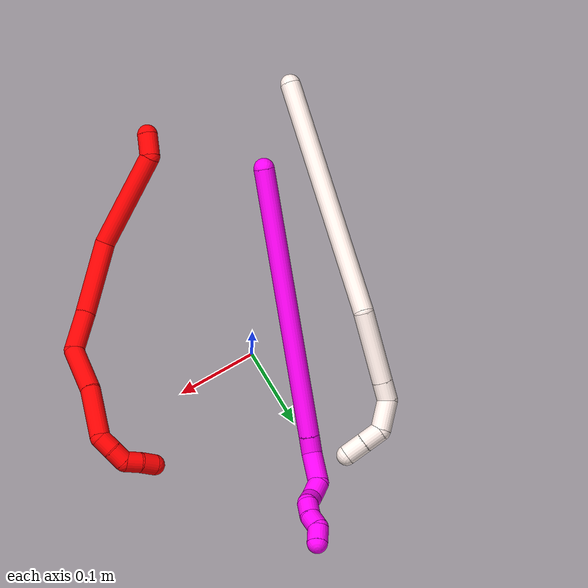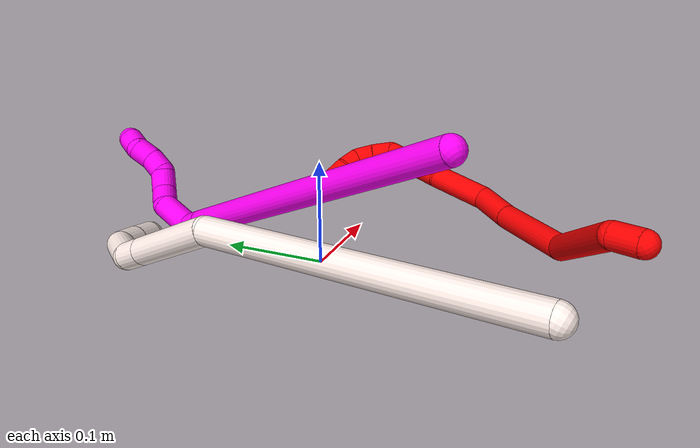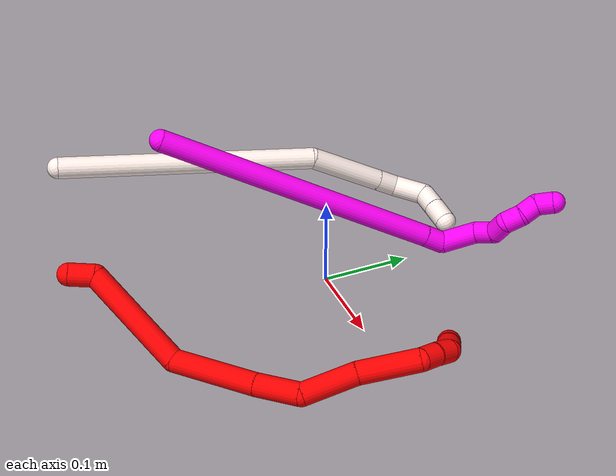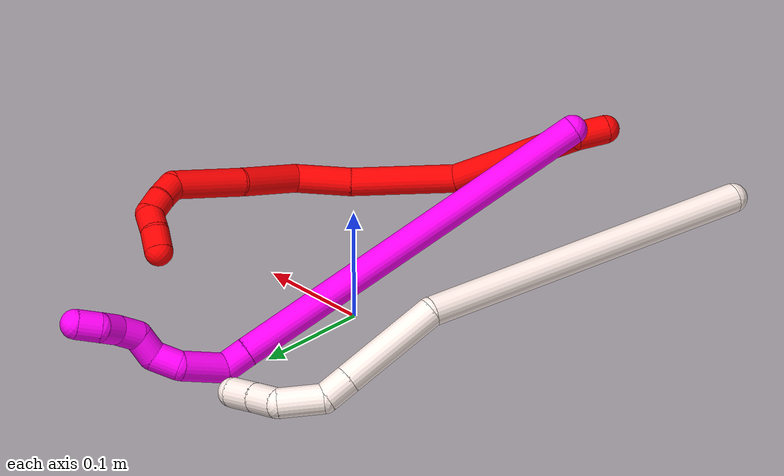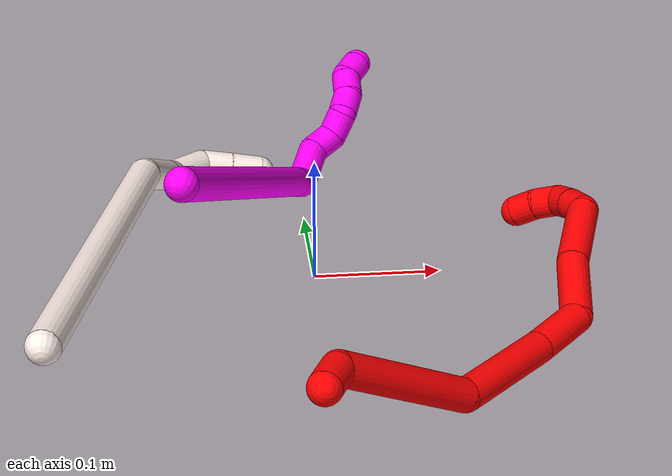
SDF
<sdf version="1.7">
 <world name="default">
  <model name="photoneo_s_sensor">
   <static>1</static>
   <pose>0 0 2 1.57079 1.57079 3.14159</pose>
   <link name="link">
    <inertial><mass>0.1</mass></inertial>
    <sensor name="sensor" type="depth">
     <update_rate>30</update_rate>
     <camera>
      <horizontal_fov>1.22</horizontal_fov>
      <image><width>1920</width><height>1200</height><format>B8G8R8</format></image>
      <clip><near>0.1</near><far>4</far></clip>
      <depth_camera><output>points</output></depth_camera>
     </camera>
     <plugin name="camera_plugin" filename="libgazebo_ros_depth_camera.so">
      <baseline>0.2</baseline>
      <alwaysOn>1</alwaysOn>
      <updateRate>0.0</updateRate>
      <cameraName>camera_ir</cameraName>
      <imageTopicName>/camera/color/image_raw</imageTopicName>
      <cameraInfoTopicName>/camera/color/camera_info</cameraInfoTopicName>
      <depthImageTopicName>/camera/depth/image_raw</depthImageTopicName>
      <depthImageCameraInfoTopicName>/camera/depth/camera_info</depthImageCameraInfoTopicName>
      <pointCloudTopicName>/camera/depth/points</pointCloudTopicName>
      <frameName>fr_optical</frameName>
      <pointCloudCutoff>0.1</pointCloudCutoff>
      <pointCloudCutoffMax>2.0</pointCloudCutoffMax>
      <distortionK1>0</distortionK1>
      <distortionK2>0</distortionK2>
      <distortionK3>0</distortionK3>
      <distortionT1>0</distortionT1>
      <distortionT2>0</distortionT2>
      <CxPrime>0</CxPrime>
      <Cx>0</Cx>
      <Cy>0</Cy>
      <focalLength>0</focalLength>
      <hackBaseline>0</hackBaseline>
     </plugin>
    </sensor>
   </link>
  </model>
  <model name="2">
   <static>0</static>
   <link name="2">
    <collision name="collision-cylinder-e_1_1_4">
     <pose>0.004115 0.007778 -0.011113 -2.53095 0.294532 -0.8798</pose>
     <geometry><cylinder><radius>0.0125</radius><length>0.02835</length></cylinder></geometry>
     <surface>
      <friction><ode><mu>1.16</mu><mu2>1.16</mu2><slip1>0</slip1><slip2>0</slip2></ode></friction>
      <contact><ode><kp>1e+06</kp><kd>1</kd><max_vel>0</max_vel><min_depth>0.001</min_depth></ode></contact>
     </surface>
    </collision>
    <visual name="visual-cylinder-e_1_1_4">
     <pose>0.004115 0.007778 -0.011113 -2.53095 0.294532 -0.8798</pose>
     <geometry><cylinder><radius>0.0125</radius><length>0.02835</length></cylinder></geometry>
     <material><ambient>1 0 0 1</ambient></material>
    </visual>
    <collision name="collision-cylinder-e_2_4_5">
     <pose>0.058407 0.018451 -0.057583 -3.05987 0.955396 -2.98398</pose>
     <geometry><cylinder><radius>0.0125</radius><length>0.122901</length></cylinder></geometry>
     <surface>
      <friction><ode><mu>1.16</mu><mu2>1.16</mu2><slip1>0</slip1><slip2>0</slip2></ode></friction>
      <contact><ode><kp>1e+06</kp><kd>1</kd><max_vel>0</max_vel><min_depth>0.001</min_depth></ode></contact>
     </surface>
    </collision>
    <visual name="visual-cylinder-e_2_4_5">
     <pose>0.058407 0.018451 -0.057583 -3.05987 0.955396 -2.98398</pose>
     <geometry><cylinder><radius>0.0125</radius><length>0.122901</length></cylinder></geometry>
     <material><ambient>1 0 0 1</ambient></material>
    </visual>
    <collision name="collision-cylinder-e_3_5_6">
     <pose>0.13639 0.046377 -0.120265 -2.40003 0.643735 -1.41796</pose>
     <geometry><cylinder><radius>0.0125</radius><length>0.092657</length></cylinder></geometry>
     <surface>
      <friction><ode><mu>1.16</mu><mu2>1.16</mu2><slip1>0</slip1><slip2>0</slip2></ode></friction>
      <contact><ode><kp>1e+06</kp><kd>1</kd><max_vel>0</max_vel><min_depth>0.001</min_depth></ode></contact>
     </surface>
    </collision>
    <visual name="visual-cylinder-e_3_5_6">
     <pose>0.13639 0.046377 -0.120265 -2.40003 0.643735 -1.41796</pose>
     <geometry><cylinder><radius>0.0125</radius><length>0.092657</length></cylinder></geometry>
     <material><ambient>1 0 0 1</ambient></material>
    </visual>
    <collision name="collision-cylinder-e_4_6_7">
     <pose>0.178701 0.08689 -0.160652 -2.27151 0.621421 -1.20925</pose>
     <geometry><cylinder><radius>0.0125</radius><length>0.049831</length></cylinder></geometry>
     <surface>
      <friction><ode><mu>1.16</mu><mu2>1.16</mu2><slip1>0</slip1><slip2>0</slip2></ode></friction>
      <contact><ode><kp>1e+06</kp><kd>1</kd><max_vel>0</max_vel><min_depth>0.001</min_depth></ode></contact>
     </surface>
    </collision>
    <visual name="visual-cylinder-e_4_6_7">
     <pose>0.178701 0.08689 -0.160652 -2.27151 0.621421 -1.20925</pose>
     <geometry><cylinder><radius>0.0125</radius><length>0.049831</length></cylinder></geometry>
     <material><ambient>1 0 0 1</ambient></material>
    </visual>
    <collision name="collision-cylinder-e_5_7_8">
     <pose>0.191855 0.124588 -0.1935 -2.2985 -0.045409 0.101194</pose>
     <geometry><cylinder><radius>0.0125</radius><length>0.059558</length></cylinder></geometry>
     <surface>
      <friction><ode><mu>1.16</mu><mu2>1.16</mu2><slip1>0</slip1><slip2>0</slip2></ode></friction>
      <contact><ode><kp>1e+06</kp><kd>1</kd><max_vel>0</max_vel><min_depth>0.001</min_depth></ode></contact>
     </surface>
    </collision>
    <visual name="visual-cylinder-e_5_7_8">
     <pose>0.191855 0.124588 -0.1935 -2.2985 -0.045409 0.101194</pose>
     <geometry><cylinder><radius>0.0125</radius><length>0.059558</length></cylinder></geometry>
     <material><ambient>1 0 0 1</ambient></material>
    </visual>
    <collision name="collision-cylinder-e_6_8_9">
     <pose>0.195022 0.171053 -0.235181 -2.30511 0.137453 -0.307302</pose>
     <geometry><cylinder><radius>0.0125</radius><length>0.065967</length></cylinder></geometry>
     <surface>
      <friction><ode><mu>1.16</mu><mu2>1.16</mu2><slip1>0</slip1><slip2>0</slip2></ode></friction>
      <contact><ode><kp>1e+06</kp><kd>1</kd><max_vel>0</max_vel><min_depth>0.001</min_depth></ode></contact>
     </surface>
    </collision>
    <visual name="visual-cylinder-e_6_8_9">
     <pose>0.195022 0.171053 -0.235181 -2.30511 0.137453 -0.307302</pose>
     <geometry><cylinder><radius>0.0125</radius><length>0.065967</length></cylinder></geometry>
     <material><ambient>1 0 0 1</ambient></material>
    </visual>
    <collision name="collision-cylinder-e_7_9_10">
     <pose>0.196266 0.198191 -0.266238 -2.83657 -0.328529 1.64623</pose>
     <geometry><cylinder><radius>0.0125</radius><length>0.020302</length></cylinder></geometry>
     <surface>
      <friction><ode><mu>1.16</mu><mu2>1.16</mu2><slip1>0</slip1><slip2>0</slip2></ode></friction>
      <contact><ode><kp>1e+06</kp><kd>1</kd><max_vel>0</max_vel><min_depth>0.001</min_depth></ode></contact>
     </surface>
    </collision>
    <visual name="visual-cylinder-e_7_9_10">
     <pose>0.196266 0.198191 -0.266238 -2.83657 -0.328529 1.64623</pose>
     <geometry><cylinder><radius>0.0125</radius><length>0.020302</length></cylinder></geometry>
     <material><ambient>1 0 0 1</ambient></material>
    </visual>
    <collision name="collision-cylinder-e_8_10_11">
     <pose>0.189831 0.202783 -0.284919 -2.96419 -0.315936 2.12319</pose>
     <geometry><cylinder><radius>0.0125</radius><length>0.020341</length></cylinder></geometry>
     <surface>
      <friction><ode><mu>1.16</mu><mu2>1.16</mu2><slip1>0</slip1><slip2>0</slip2></ode></friction>
      <contact><ode><kp>1e+06</kp><kd>1</kd><max_vel>0</max_vel><min_depth>0.001</min_depth></ode></contact>
     </surface>
    </collision>
    <visual name="visual-cylinder-e_8_10_11">
     <pose>0.189831 0.202783 -0.284919 -2.96419 -0.315936 2.12319</pose>
     <geometry><cylinder><radius>0.0125</radius><length>0.020341</length></cylinder></geometry>
     <material><ambient>1 0 0 1</ambient></material>
    </visual>
    <collision name="collision-cylinder-e_9_11_12">
     <pose>0.179145 0.201733 -0.300418 2.71004 -0.851742 -2.24139</pose>
     <geometry><cylinder><radius>0.0125</radius><length>0.020004</length></cylinder></geometry>
     <surface>
      <friction><ode><mu>1.16</mu><mu2>1.16</mu2><slip1>0</slip1><slip2>0</slip2></ode></friction>
      <contact><ode><kp>1e+06</kp><kd>1</kd><max_vel>0</max_vel><min_depth>0.001</min_depth></ode></contact>
     </surface>
    </collision>
    <visual name="visual-cylinder-e_9_11_12">
     <pose>0.179145 0.201733 -0.300418 2.71004 -0.851742 -2.24139</pose>
     <geometry><cylinder><radius>0.0125</radius><length>0.020004</length></cylinder></geometry>
     <material><ambient>1 0 0 1</ambient></material>
    </visual>
    <collision name="collision-cylinder-e_10_12_2">
     <pose>0.16541 0.195069 -0.313262 2.62372 -0.66642 -1.83516</pose>
     <geometry><cylinder><radius>0.0125</radius><length>0.020089</length></cylinder></geometry>
     <surface>
      <friction><ode><mu>1.16</mu><mu2>1.16</mu2><slip1>0</slip1><slip2>0</slip2></ode></friction>
      <contact><ode><kp>1e+06</kp><kd>1</kd><max_vel>0</max_vel><min_depth>0.001</min_depth></ode></contact>
     </surface>
    </collision>
    <visual name="visual-cylinder-e_10_12_2">
     <pose>0.16541 0.195069 -0.313262 2.62372 -0.66642 -1.83516</pose>
     <geometry><cylinder><radius>0.0125</radius><length>0.020089</length></cylinder></geometry>
     <material><ambient>1 0 0 1</ambient></material>
    </visual>
    <collision name="collision-sphere-2">
     <pose>0.159201 0.191161 -0.320122 0 -0 0</pose>
     <geometry><sphere><radius>0.0125</radius></sphere></geometry>
     <surface>
      <friction><ode><mu>1.16</mu><mu2>1.16</mu2><slip1>0</slip1><slip2>0</slip2></ode></friction>
      <contact><ode><kp>1e+06</kp><kd>1</kd><max_vel>0</max_vel><min_depth>0.001</min_depth></ode></contact>
     </surface>
    </collision>
    <visual name="visual-sphere-2">
     <pose>0.159201 0.191161 -0.320122 0 -0 0</pose>
     <geometry><sphere><radius>0.0125</radius></sphere></geometry>
     <material><ambient>1 0 0 1</ambient></material>
    </visual>
    <collision name="collision-sphere-12">
     <pose>0.171619 0.198977 -0.306402 0 -0 0</pose>
     <geometry><sphere><radius>0.0125</radius></sphere></geometry>
     <surface>
      <friction><ode><mu>1.16</mu><mu2>1.16</mu2><slip1>0</slip1><slip2>0</slip2></ode></friction>
      <contact><ode><kp>1e+06</kp><kd>1</kd><max_vel>0</max_vel><min_depth>0.001</min_depth></ode></contact>
     </surface>
    </collision>
    <visual name="visual-sphere-12">
     <pose>0.171619 0.198977 -0.306402 0 -0 0</pose>
     <geometry><sphere><radius>0.0125</radius></sphere></geometry>
     <material><ambient>1 0 0 1</ambient></material>
    </visual>
    <collision name="collision-sphere-11">
     <pose>0.186671 0.204489 -0.294434 0 -0 0</pose>
     <geometry><sphere><radius>0.0125</radius></sphere></geometry>
     <surface>
      <friction><ode><mu>1.16</mu><mu2>1.16</mu2><slip1>0</slip1><slip2>0</slip2></ode></friction>
      <contact><ode><kp>1e+06</kp><kd>1</kd><max_vel>0</max_vel><min_depth>0.001</min_depth></ode></contact>
     </surface>
    </collision>
    <visual name="visual-sphere-11">
     <pose>0.186671 0.204489 -0.294434 0 -0 0</pose>
     <geometry><sphere><radius>0.0125</radius></sphere></geometry>
     <material><ambient>1 0 0 1</ambient></material>
    </visual>
    <collision name="collision-sphere-10">
     <pose>0.192991 0.201077 -0.275403 0 -0 0</pose>
     <geometry><sphere><radius>0.0125</radius></sphere></geometry>
     <surface>
      <friction><ode><mu>1.16</mu><mu2>1.16</mu2><slip1>0</slip1><slip2>0</slip2></ode></friction>
      <contact><ode><kp>1e+06</kp><kd>1</kd><max_vel>0</max_vel><min_depth>0.001</min_depth></ode></contact>
     </surface>
    </collision>
    <visual name="visual-sphere-10">
     <pose>0.192991 0.201077 -0.275403 0 -0 0</pose>
     <geometry><sphere><radius>0.0125</radius></sphere></geometry>
     <material><ambient>1 0 0 1</ambient></material>
    </visual>
    <collision name="collision-sphere-9">
     <pose>0.199542 0.195306 -0.257074 0 -0 0</pose>
     <geometry><sphere><radius>0.0125</radius></sphere></geometry>
     <surface>
      <friction><ode><mu>1.16</mu><mu2>1.16</mu2><slip1>0</slip1><slip2>0</slip2></ode></friction>
      <contact><ode><kp>1e+06</kp><kd>1</kd><max_vel>0</max_vel><min_depth>0.001</min_depth></ode></contact>
     </surface>
    </collision>
    <visual name="visual-sphere-9">
     <pose>0.199542 0.195306 -0.257074 0 -0 0</pose>
     <geometry><sphere><radius>0.0125</radius></sphere></geometry>
     <material><ambient>1 0 0 1</ambient></material>
    </visual>
    <collision name="collision-sphere-4">
     <pose>0.00823 0.015556 -0.022226 0 -0 0</pose>
     <geometry><sphere><radius>0.0125</radius></sphere></geometry>
     <surface>
      <friction><ode><mu>1.16</mu><mu2>1.16</mu2><slip1>0</slip1><slip2>0</slip2></ode></friction>
      <contact><ode><kp>1e+06</kp><kd>1</kd><max_vel>0</max_vel><min_depth>0.001</min_depth></ode></contact>
     </surface>
    </collision>
    <visual name="visual-sphere-4">
     <pose>0.00823 0.015556 -0.022226 0 -0 0</pose>
     <geometry><sphere><radius>0.0125</radius></sphere></geometry>
     <material><ambient>1 0 0 1</ambient></material>
    </visual>
    <collision name="collision-sphere-1">
     <geometry><sphere><radius>0.0125</radius></sphere></geometry>
     <surface>
      <friction><ode><mu>1.16</mu><mu2>1.16</mu2><slip1>0</slip1><slip2>0</slip2></ode></friction>
      <contact><ode><kp>1e+06</kp><kd>1</kd><max_vel>0</max_vel><min_depth>0.001</min_depth></ode></contact>
     </surface>
    </collision>
    <visual name="visual-sphere-1">
     <geometry><sphere><radius>0.0125</radius></sphere></geometry>
     <material><ambient>1 0 0 1</ambient></material>
    </visual>
    <collision name="collision-sphere-8">
     <pose>0.190503 0.146801 -0.213288 0 -0 0</pose>
     <geometry><sphere><radius>0.0125</radius></sphere></geometry>
     <surface>
      <friction><ode><mu>1.16</mu><mu2>1.16</mu2><slip1>0</slip1><slip2>0</slip2></ode></friction>
      <contact><ode><kp>1e+06</kp><kd>1</kd><max_vel>0</max_vel><min_depth>0.001</min_depth></ode></contact>
     </surface>
    </collision>
    <visual name="visual-sphere-8">
     <pose>0.190503 0.146801 -0.213288 0 -0 0</pose>
     <geometry><sphere><radius>0.0125</radius></sphere></geometry>
     <material><ambient>1 0 0 1</ambient></material>
    </visual>
    <collision name="collision-sphere-5">
     <pose>0.108584 0.021347 -0.092939 0 -0 0</pose>
     <geometry><sphere><radius>0.0125</radius></sphere></geometry>
     <surface>
      <friction><ode><mu>1.16</mu><mu2>1.16</mu2><slip1>0</slip1><slip2>0</slip2></ode></friction>
      <contact><ode><kp>1e+06</kp><kd>1</kd><max_vel>0</max_vel><min_depth>0.001</min_depth></ode></contact>
     </surface>
    </collision>
    <visual name="visual-sphere-5">
     <pose>0.108584 0.021347 -0.092939 0 -0 0</pose>
     <geometry><sphere><radius>0.0125</radius></sphere></geometry>
     <material><ambient>1 0 0 1</ambient></material>
    </visual>
    <collision name="collision-sphere-6">
     <pose>0.164195 0.071406 -0.147591 0 -0 0</pose>
     <geometry><sphere><radius>0.0125</radius></sphere></geometry>
     <surface>
      <friction><ode><mu>1.16</mu><mu2>1.16</mu2><slip1>0</slip1><slip2>0</slip2></ode></friction>
      <contact><ode><kp>1e+06</kp><kd>1</kd><max_vel>0</max_vel><min_depth>0.001</min_depth></ode></contact>
     </surface>
    </collision>
    <visual name="visual-sphere-6">
     <pose>0.164195 0.071406 -0.147591 0 -0 0</pose>
     <geometry><sphere><radius>0.0125</radius></sphere></geometry>
     <material><ambient>1 0 0 1</ambient></material>
    </visual>
    <collision name="collision-sphere-7">
     <pose>0.193206 0.102375 -0.173713 0 -0 0</pose>
     <geometry><sphere><radius>0.0125</radius></sphere></geometry>
     <surface>
      <friction><ode><mu>1.16</mu><mu2>1.16</mu2><slip1>0</slip1><slip2>0</slip2></ode></friction>
      <contact><ode><kp>1e+06</kp><kd>1</kd><max_vel>0</max_vel><min_depth>0.001</min_depth></ode></contact>
     </surface>
    </collision>
    <visual name="visual-sphere-7">
     <pose>0.193206 0.102375 -0.173713 0 -0 0</pose>
     <geometry><sphere><radius>0.0125</radius></sphere></geometry>
     <material><ambient>1 0 0 1</ambient></material>
    </visual>
    <inertial>
     <pose>0.135762 0.091844 -0.154166 0 -0 0</pose>
     <mass>0.5</mass>
     <inertia>
      <ixx>-0.000108</ixx>
      <ixy>0</ixy>
      <ixz>0</ixz>
      <iyy>8.2e-05</iyy>
      <iyz>0</iyz>
      <izz>-0.000294</izz>
     </inertia>
    </inertial>
   </link>
   <pose>-0.018665 -0.287213 0.075928 0.985399 0.264263 -0.119452</pose>
  </model>
  <model name="10">
   <static>0</static>
   <link name="10">
    <collision name="collision-cylinder-e_1_1_4">
     <pose>0.0173 0.145289 0.07512 -1.09361 0.105379 -0.064184</pose>
     <geometry><cylinder><radius>0.0125</radius><length>0.328944</length></cylinder></geometry>
     <surface>
      <friction><ode><mu>1.16</mu><mu2>1.16</mu2><slip1>0</slip1><slip2>0</slip2></ode></friction>
      <contact><ode><kp>1e+06</kp><kd>1</kd><max_vel>0</max_vel><min_depth>0.001</min_depth></ode></contact>
     </surface>
    </collision>
    <visual name="visual-cylinder-e_1_1_4">
     <pose>0.0173 0.145289 0.07512 -1.09361 0.105379 -0.064184</pose>
     <geometry><cylinder><radius>0.0125</radius><length>0.328944</length></cylinder></geometry>
     <material><ambient>1 0 0.964706 1</ambient></material>
    </visual>
    <collision name="collision-cylinder-e_2_4_5">
     <pose>0.035945 0.300812 0.155158 -1.12289 0.117937 -0.07423</pose>
     <geometry><cylinder><radius>0.0125</radius><length>0.022869</length></cylinder></geometry>
     <surface>
      <friction><ode><mu>1.16</mu><mu2>1.16</mu2><slip1>0</slip1><slip2>0</slip2></ode></friction>
      <contact><ode><kp>1e+06</kp><kd>1</kd><max_vel>0</max_vel><min_depth>0.001</min_depth></ode></contact>
     </surface>
    </collision>
    <visual name="visual-cylinder-e_2_4_5">
     <pose>0.035945 0.300812 0.155158 -1.12289 0.117937 -0.07423</pose>
     <geometry><cylinder><radius>0.0125</radius><length>0.022869</length></cylinder></geometry>
     <material><ambient>1 0 0.964706 1</ambient></material>
    </visual>
    <collision name="collision-cylinder-e_3_5_6">
     <pose>0.035927 0.318516 0.179449 -0.367975 -0.065568 0.012206</pose>
     <geometry><cylinder><radius>0.0125</radius><length>0.041615</length></cylinder></geometry>
     <surface>
      <friction><ode><mu>1.16</mu><mu2>1.16</mu2><slip1>0</slip1><slip2>0</slip2></ode></friction>
      <contact><ode><kp>1e+06</kp><kd>1</kd><max_vel>0</max_vel><min_depth>0.001</min_depth></ode></contact>
     </surface>
    </collision>
    <visual name="visual-cylinder-e_3_5_6">
     <pose>0.035927 0.318516 0.179449 -0.367975 -0.065568 0.012206</pose>
     <geometry><cylinder><radius>0.0125</radius><length>0.041615</length></cylinder></geometry>
     <material><ambient>1 0 0.964706 1</ambient></material>
    </visual>
    <collision name="collision-cylinder-e_4_6_7">
     <pose>0.039871 0.32753 0.20912 -0.148846 0.471318 -0.035803</pose>
     <geometry><cylinder><radius>0.0125</radius><length>0.023377</length></cylinder></geometry>
     <surface>
      <friction><ode><mu>1.16</mu><mu2>1.16</mu2><slip1>0</slip1><slip2>0</slip2></ode></friction>
      <contact><ode><kp>1e+06</kp><kd>1</kd><max_vel>0</max_vel><min_depth>0.001</min_depth></ode></contact>
     </surface>
    </collision>
    <visual name="visual-cylinder-e_4_6_7">
     <pose>0.039871 0.32753 0.20912 -0.148846 0.471318 -0.035803</pose>
     <geometry><cylinder><radius>0.0125</radius><length>0.023377</length></cylinder></geometry>
     <material><ambient>1 0 0.964706 1</ambient></material>
    </visual>
    <collision name="collision-cylinder-e_5_7_8">
     <pose>0.04644 0.324747 0.229125 0.419338 0.118137 0.025167</pose>
     <geometry><cylinder><radius>0.0125</radius><length>0.021403</length></cylinder></geometry>
     <surface>
      <friction><ode><mu>1.16</mu><mu2>1.16</mu2><slip1>0</slip1><slip2>0</slip2></ode></friction>
      <contact><ode><kp>1e+06</kp><kd>1</kd><max_vel>0</max_vel><min_depth>0.001</min_depth></ode></contact>
     </surface>
    </collision>
    <visual name="visual-cylinder-e_5_7_8">
     <pose>0.04644 0.324747 0.229125 0.419338 0.118137 0.025167</pose>
     <geometry><cylinder><radius>0.0125</radius><length>0.021403</length></cylinder></geometry>
     <material><ambient>1 0 0.964706 1</ambient></material>
    </visual>
    <collision name="collision-cylinder-e_6_8_9">
     <pose>0.046834 0.322154 0.249061 -0.167897 -0.083355 0.007018</pose>
     <geometry><cylinder><radius>0.0125</radius><length>0.020822</length></cylinder></geometry>
     <surface>
      <friction><ode><mu>1.16</mu><mu2>1.16</mu2><slip1>0</slip1><slip2>0</slip2></ode></friction>
      <contact><ode><kp>1e+06</kp><kd>1</kd><max_vel>0</max_vel><min_depth>0.001</min_depth></ode></contact>
     </surface>
    </collision>
    <visual name="visual-cylinder-e_6_8_9">
     <pose>0.046834 0.322154 0.249061 -0.167897 -0.083355 0.007018</pose>
     <geometry><cylinder><radius>0.0125</radius><length>0.020822</length></cylinder></geometry>
     <material><ambient>1 0 0.964706 1</ambient></material>
    </visual>
    <collision name="collision-cylinder-e_7_9_10">
     <pose>0.041961 0.325901 0.268475 -0.215776 -0.402792 0.044218</pose>
     <geometry><cylinder><radius>0.0125</radius><length>0.020442</length></cylinder></geometry>
     <surface>
      <friction><ode><mu>1.16</mu><mu2>1.16</mu2><slip1>0</slip1><slip2>0</slip2></ode></friction>
      <contact><ode><kp>1e+06</kp><kd>1</kd><max_vel>0</max_vel><min_depth>0.001</min_depth></ode></contact>
     </surface>
    </collision>
    <visual name="visual-cylinder-e_7_9_10">
     <pose>0.041961 0.325901 0.268475 -0.215776 -0.402792 0.044218</pose>
     <geometry><cylinder><radius>0.0125</radius><length>0.020442</length></cylinder></geometry>
     <material><ambient>1 0 0.964706 1</ambient></material>
    </visual>
    <collision name="collision-cylinder-e_8_10_2">
     <pose>0.039769 0.33138 0.287149 -0.350202 0.177693 -0.031517</pose>
     <geometry><cylinder><radius>0.0125</radius><length>0.020527</length></cylinder></geometry>
     <surface>
      <friction><ode><mu>1.16</mu><mu2>1.16</mu2><slip1>0</slip1><slip2>0</slip2></ode></friction>
      <contact><ode><kp>1e+06</kp><kd>1</kd><max_vel>0</max_vel><min_depth>0.001</min_depth></ode></contact>
     </surface>
    </collision>
    <visual name="visual-cylinder-e_8_10_2">
     <pose>0.039769 0.33138 0.287149 -0.350202 0.177693 -0.031517</pose>
     <geometry><cylinder><radius>0.0125</radius><length>0.020527</length></cylinder></geometry>
     <material><ambient>1 0 0.964706 1</ambient></material>
    </visual>
    <collision name="collision-sphere-2">
     <pose>0.041583 0.334846 0.296637 0 -0 0</pose>
     <geometry><sphere><radius>0.0125</radius></sphere></geometry>
     <surface>
      <friction><ode><mu>1.16</mu><mu2>1.16</mu2><slip1>0</slip1><slip2>0</slip2></ode></friction>
      <contact><ode><kp>1e+06</kp><kd>1</kd><max_vel>0</max_vel><min_depth>0.001</min_depth></ode></contact>
     </surface>
    </collision>
    <visual name="visual-sphere-2">
     <pose>0.041583 0.334846 0.296637 0 -0 0</pose>
     <geometry><sphere><radius>0.0125</radius></sphere></geometry>
     <material><ambient>1 0 0.964706 1</ambient></material>
    </visual>
    <collision name="collision-sphere-10">
     <pose>0.037954 0.327914 0.27766 0 -0 0</pose>
     <geometry><sphere><radius>0.0125</radius></sphere></geometry>
     <surface>
      <friction><ode><mu>1.16</mu><mu2>1.16</mu2><slip1>0</slip1><slip2>0</slip2></ode></friction>
      <contact><ode><kp>1e+06</kp><kd>1</kd><max_vel>0</max_vel><min_depth>0.001</min_depth></ode></contact>
     </surface>
    </collision>
    <visual name="visual-sphere-10">
     <pose>0.037954 0.327914 0.27766 0 -0 0</pose>
     <geometry><sphere><radius>0.0125</radius></sphere></geometry>
     <material><ambient>1 0 0.964706 1</ambient></material>
    </visual>
    <collision name="collision-sphere-9">
     <pose>0.045967 0.323888 0.25929 0 -0 0</pose>
     <geometry><sphere><radius>0.0125</radius></sphere></geometry>
     <surface>
      <friction><ode><mu>1.16</mu><mu2>1.16</mu2><slip1>0</slip1><slip2>0</slip2></ode></friction>
      <contact><ode><kp>1e+06</kp><kd>1</kd><max_vel>0</max_vel><min_depth>0.001</min_depth></ode></contact>
     </surface>
    </collision>
    <visual name="visual-sphere-9">
     <pose>0.045967 0.323888 0.25929 0 -0 0</pose>
     <geometry><sphere><radius>0.0125</radius></sphere></geometry>
     <material><ambient>1 0 0.964706 1</ambient></material>
    </visual>
    <collision name="collision-sphere-4">
     <pose>0.0346 0.290577 0.15024 0 -0 0</pose>
     <geometry><sphere><radius>0.0125</radius></sphere></geometry>
     <surface>
      <friction><ode><mu>1.16</mu><mu2>1.16</mu2><slip1>0</slip1><slip2>0</slip2></ode></friction>
      <contact><ode><kp>1e+06</kp><kd>1</kd><max_vel>0</max_vel><min_depth>0.001</min_depth></ode></contact>
     </surface>
    </collision>
    <visual name="visual-sphere-4">
     <pose>0.0346 0.290577 0.15024 0 -0 0</pose>
     <geometry><sphere><radius>0.0125</radius></sphere></geometry>
     <material><ambient>1 0 0.964706 1</ambient></material>
    </visual>
    <collision name="collision-sphere-1">
     <geometry><sphere><radius>0.0125</radius></sphere></geometry>
     <surface>
      <friction><ode><mu>1.16</mu><mu2>1.16</mu2><slip1>0</slip1><slip2>0</slip2></ode></friction>
      <contact><ode><kp>1e+06</kp><kd>1</kd><max_vel>0</max_vel><min_depth>0.001</min_depth></ode></contact>
     </surface>
    </collision>
    <visual name="visual-sphere-1">
     <geometry><sphere><radius>0.0125</radius></sphere></geometry>
     <material><ambient>1 0 0.964706 1</ambient></material>
    </visual>
    <collision name="collision-sphere-8">
     <pose>0.047701 0.32042 0.238832 0 -0 0</pose>
     <geometry><sphere><radius>0.0125</radius></sphere></geometry>
     <surface>
      <friction><ode><mu>1.16</mu><mu2>1.16</mu2><slip1>0</slip1><slip2>0</slip2></ode></friction>
      <contact><ode><kp>1e+06</kp><kd>1</kd><max_vel>0</max_vel><min_depth>0.001</min_depth></ode></contact>
     </surface>
    </collision>
    <visual name="visual-sphere-8">
     <pose>0.047701 0.32042 0.238832 0 -0 0</pose>
     <geometry><sphere><radius>0.0125</radius></sphere></geometry>
     <material><ambient>1 0 0.964706 1</ambient></material>
    </visual>
    <collision name="collision-sphere-5">
     <pose>0.037291 0.311047 0.160076 0 -0 0</pose>
     <geometry><sphere><radius>0.0125</radius></sphere></geometry>
     <surface>
      <friction><ode><mu>1.16</mu><mu2>1.16</mu2><slip1>0</slip1><slip2>0</slip2></ode></friction>
      <contact><ode><kp>1e+06</kp><kd>1</kd><max_vel>0</max_vel><min_depth>0.001</min_depth></ode></contact>
     </surface>
    </collision>
    <visual name="visual-sphere-5">
     <pose>0.037291 0.311047 0.160076 0 -0 0</pose>
     <geometry><sphere><radius>0.0125</radius></sphere></geometry>
     <material><ambient>1 0 0.964706 1</ambient></material>
    </visual>
    <collision name="collision-sphere-6">
     <pose>0.034564 0.325985 0.198821 0 -0 0</pose>
     <geometry><sphere><radius>0.0125</radius></sphere></geometry>
     <surface>
      <friction><ode><mu>1.16</mu><mu2>1.16</mu2><slip1>0</slip1><slip2>0</slip2></ode></friction>
      <contact><ode><kp>1e+06</kp><kd>1</kd><max_vel>0</max_vel><min_depth>0.001</min_depth></ode></contact>
     </surface>
    </collision>
    <visual name="visual-sphere-6">
     <pose>0.034564 0.325985 0.198821 0 -0 0</pose>
     <geometry><sphere><radius>0.0125</radius></sphere></geometry>
     <material><ambient>1 0 0.964706 1</ambient></material>
    </visual>
    <collision name="collision-sphere-7">
     <pose>0.045178 0.329074 0.219419 0 -0 0</pose>
     <geometry><sphere><radius>0.0125</radius></sphere></geometry>
     <surface>
      <friction><ode><mu>1.16</mu><mu2>1.16</mu2><slip1>0</slip1><slip2>0</slip2></ode></friction>
      <contact><ode><kp>1e+06</kp><kd>1</kd><max_vel>0</max_vel><min_depth>0.001</min_depth></ode></contact>
     </surface>
    </collision>
    <visual name="visual-sphere-7">
     <pose>0.045178 0.329074 0.219419 0 -0 0</pose>
     <geometry><sphere><radius>0.0125</radius></sphere></geometry>
     <material><ambient>1 0 0.964706 1</ambient></material>
    </visual>
    <inertial>
     <pose>0.025166 0.205412 0.124175 0 -0 0</pose>
     <mass>0.5</mass>
     <inertia>
      <ixx>0.002787</ixx>
      <ixy>0</ixy>
      <ixz>0</ixz>
      <iyy>0.001235</iyy>
      <iyz>0</iyz>
      <izz>-0.002927</izz>
     </inertia>
    </inertial>
   </link>
   <pose>-0.104561 -0.152882 0.160783 -0.901337 0.238226 -0.334362</pose>
  </model>
  <model name="11">
   <static>0</static>
   <link name="11">
    <collision name="collision-cylinder-e_1_1_4">
     <pose>-0.01864 0.064637 0.133386 -0.451242 -0.125102 0.02875</pose>
     <geometry><cylinder><radius>0.0125</radius><length>0.298779</length></cylinder></geometry>
     <surface>
      <friction><ode><mu>1.16</mu><mu2>1.16</mu2><slip1>0</slip1><slip2>0</slip2></ode></friction>
      <contact><ode><kp>1e+06</kp><kd>1</kd><max_vel>0</max_vel><min_depth>0.001</min_depth></ode></contact>
     </surface>
    </collision>
    <visual name="visual-cylinder-e_1_1_4">
     <pose>-0.01864 0.064637 0.133386 -0.451242 -0.125102 0.02875</pose>
     <geometry><cylinder><radius>0.0125</radius><length>0.298779</length></cylinder></geometry>
     <material><ambient>1 0.933333 0.909804 1</ambient></material>
    </visual>
    <collision name="collision-cylinder-e_2_4_5">
     <pose>-0.051937 0.159149 0.295875 -0.798485 -0.337944 0.143704</pose>
     <geometry><cylinder><radius>0.0125</radius><length>0.088416</length></cylinder></geometry>
     <surface>
      <friction><ode><mu>1.16</mu><mu2>1.16</mu2><slip1>0</slip1><slip2>0</slip2></ode></friction>
      <contact><ode><kp>1e+06</kp><kd>1</kd><max_vel>0</max_vel><min_depth>0.001</min_depth></ode></contact>
     </surface>
    </collision>
    <visual name="visual-cylinder-e_2_4_5">
     <pose>-0.051937 0.159149 0.295875 -0.798485 -0.337944 0.143704</pose>
     <geometry><cylinder><radius>0.0125</radius><length>0.088416</length></cylinder></geometry>
     <material><ambient>1 0.933333 0.909804 1</ambient></material>
    </visual>
    <collision name="collision-cylinder-e_3_5_6">
     <pose>-0.070636 0.19719 0.332937 -0.798199 -0.340614 0.144799</pose>
     <geometry><cylinder><radius>0.0125</radius><length>0.024195</length></cylinder></geometry>
     <surface>
      <friction><ode><mu>1.16</mu><mu2>1.16</mu2><slip1>0</slip1><slip2>0</slip2></ode></friction>
      <contact><ode><kp>1e+06</kp><kd>1</kd><max_vel>0</max_vel><min_depth>0.001</min_depth></ode></contact>
     </surface>
    </collision>
    <visual name="visual-cylinder-e_3_5_6">
     <pose>-0.070636 0.19719 0.332937 -0.798199 -0.340614 0.144799</pose>
     <geometry><cylinder><radius>0.0125</radius><length>0.024195</length></cylinder></geometry>
     <material><ambient>1 0.933333 0.909804 1</ambient></material>
    </visual>
    <collision name="collision-cylinder-e_4_6_7">
     <pose>-0.06939 0.218423 0.353828 -0.790599 0.280037 -0.117484</pose>
     <geometry><cylinder><radius>0.0125</radius><length>0.038261</length></cylinder></geometry>
     <surface>
      <friction><ode><mu>1.16</mu><mu2>1.16</mu2><slip1>0</slip1><slip2>0</slip2></ode></friction>
      <contact><ode><kp>1e+06</kp><kd>1</kd><max_vel>0</max_vel><min_depth>0.001</min_depth></ode></contact>
     </surface>
    </collision>
    <visual name="visual-cylinder-e_4_6_7">
     <pose>-0.06939 0.218423 0.353828 -0.790599 0.280037 -0.117484</pose>
     <geometry><cylinder><radius>0.0125</radius><length>0.038261</length></cylinder></geometry>
     <material><ambient>1 0.933333 0.909804 1</ambient></material>
    </visual>
    <collision name="collision-cylinder-e_5_7_8">
     <pose>-0.056254 0.240846 0.367543 -1.48735 0.696302 -0.644425</pose>
     <geometry><cylinder><radius>0.0125</radius><length>0.024473</length></cylinder></geometry>
     <surface>
      <friction><ode><mu>1.16</mu><mu2>1.16</mu2><slip1>0</slip1><slip2>0</slip2></ode></friction>
      <contact><ode><kp>1e+06</kp><kd>1</kd><max_vel>0</max_vel><min_depth>0.001</min_depth></ode></contact>
     </surface>
    </collision>
    <visual name="visual-cylinder-e_5_7_8">
     <pose>-0.056254 0.240846 0.367543 -1.48735 0.696302 -0.644425</pose>
     <geometry><cylinder><radius>0.0125</radius><length>0.024473</length></cylinder></geometry>
     <material><ambient>1 0.933333 0.909804 1</ambient></material>
    </visual>
    <collision name="collision-cylinder-e_6_8_2">
     <pose>-0.040251 0.260224 0.368998 -1.50387 0.681935 -0.640808</pose>
     <geometry><cylinder><radius>0.0125</radius><length>0.025876</length></cylinder></geometry>
     <surface>
      <friction><ode><mu>1.16</mu><mu2>1.16</mu2><slip1>0</slip1><slip2>0</slip2></ode></friction>
      <contact><ode><kp>1e+06</kp><kd>1</kd><max_vel>0</max_vel><min_depth>0.001</min_depth></ode></contact>
     </surface>
    </collision>
    <visual name="visual-cylinder-e_6_8_2">
     <pose>-0.040251 0.260224 0.368998 -1.50387 0.681935 -0.640808</pose>
     <geometry><cylinder><radius>0.0125</radius><length>0.025876</length></cylinder></geometry>
     <material><ambient>1 0.933333 0.909804 1</ambient></material>
    </visual>
    <collision name="collision-sphere-2">
     <pose>-0.032096 0.270246 0.369669 0 -0 0</pose>
     <geometry><sphere><radius>0.0125</radius></sphere></geometry>
     <surface>
      <friction><ode><mu>1.16</mu><mu2>1.16</mu2><slip1>0</slip1><slip2>0</slip2></ode></friction>
      <contact><ode><kp>1e+06</kp><kd>1</kd><max_vel>0</max_vel><min_depth>0.001</min_depth></ode></contact>
     </surface>
    </collision>
    <visual name="visual-sphere-2">
     <pose>-0.032096 0.270246 0.369669 0 -0 0</pose>
     <geometry><sphere><radius>0.0125</radius></sphere></geometry>
     <material><ambient>1 0.933333 0.909804 1</ambient></material>
    </visual>
    <collision name="collision-sphere-4">
     <pose>-0.03728 0.129274 0.266772 0 -0 0</pose>
     <geometry><sphere><radius>0.0125</radius></sphere></geometry>
     <surface>
      <friction><ode><mu>1.16</mu><mu2>1.16</mu2><slip1>0</slip1><slip2>0</slip2></ode></friction>
      <contact><ode><kp>1e+06</kp><kd>1</kd><max_vel>0</max_vel><min_depth>0.001</min_depth></ode></contact>
     </surface>
    </collision>
    <visual name="visual-sphere-4">
     <pose>-0.03728 0.129274 0.266772 0 -0 0</pose>
     <geometry><sphere><radius>0.0125</radius></sphere></geometry>
     <material><ambient>1 0.933333 0.909804 1</ambient></material>
    </visual>
    <collision name="collision-sphere-1">
     <geometry><sphere><radius>0.0125</radius></sphere></geometry>
     <surface>
      <friction><ode><mu>1.16</mu><mu2>1.16</mu2><slip1>0</slip1><slip2>0</slip2></ode></friction>
      <contact><ode><kp>1e+06</kp><kd>1</kd><max_vel>0</max_vel><min_depth>0.001</min_depth></ode></contact>
     </surface>
    </collision>
    <visual name="visual-sphere-1">
     <geometry><sphere><radius>0.0125</radius></sphere></geometry>
     <material><ambient>1 0.933333 0.909804 1</ambient></material>
    </visual>
    <collision name="collision-sphere-8">
     <pose>-0.048405 0.250202 0.368326 0 -0 0</pose>
     <geometry><sphere><radius>0.0125</radius></sphere></geometry>
     <surface>
      <friction><ode><mu>1.16</mu><mu2>1.16</mu2><slip1>0</slip1><slip2>0</slip2></ode></friction>
      <contact><ode><kp>1e+06</kp><kd>1</kd><max_vel>0</max_vel><min_depth>0.001</min_depth></ode></contact>
     </surface>
    </collision>
    <visual name="visual-sphere-8">
     <pose>-0.048405 0.250202 0.368326 0 -0 0</pose>
     <geometry><sphere><radius>0.0125</radius></sphere></geometry>
     <material><ambient>1 0.933333 0.909804 1</ambient></material>
    </visual>
    <collision name="collision-sphere-5">
     <pose>-0.066594 0.189024 0.324978 0 -0 0</pose>
     <geometry><sphere><radius>0.0125</radius></sphere></geometry>
     <surface>
      <friction><ode><mu>1.16</mu><mu2>1.16</mu2><slip1>0</slip1><slip2>0</slip2></ode></friction>
      <contact><ode><kp>1e+06</kp><kd>1</kd><max_vel>0</max_vel><min_depth>0.001</min_depth></ode></contact>
     </surface>
    </collision>
    <visual name="visual-sphere-5">
     <pose>-0.066594 0.189024 0.324978 0 -0 0</pose>
     <geometry><sphere><radius>0.0125</radius></sphere></geometry>
     <material><ambient>1 0.933333 0.909804 1</ambient></material>
    </visual>
    <collision name="collision-sphere-6">
     <pose>-0.074677 0.205355 0.340896 0 -0 0</pose>
     <geometry><sphere><radius>0.0125</radius></sphere></geometry>
     <surface>
      <friction><ode><mu>1.16</mu><mu2>1.16</mu2><slip1>0</slip1><slip2>0</slip2></ode></friction>
      <contact><ode><kp>1e+06</kp><kd>1</kd><max_vel>0</max_vel><min_depth>0.001</min_depth></ode></contact>
     </surface>
    </collision>
    <visual name="visual-sphere-6">
     <pose>-0.074677 0.205355 0.340896 0 -0 0</pose>
     <geometry><sphere><radius>0.0125</radius></sphere></geometry>
     <material><ambient>1 0.933333 0.909804 1</ambient></material>
    </visual>
    <collision name="collision-sphere-7">
     <pose>-0.064102 0.231491 0.366761 0 -0 0</pose>
     <geometry><sphere><radius>0.0125</radius></sphere></geometry>
     <surface>
      <friction><ode><mu>1.16</mu><mu2>1.16</mu2><slip1>0</slip1><slip2>0</slip2></ode></friction>
      <contact><ode><kp>1e+06</kp><kd>1</kd><max_vel>0</max_vel><min_depth>0.001</min_depth></ode></contact>
     </surface>
    </collision>
    <visual name="visual-sphere-7">
     <pose>-0.064102 0.231491 0.366761 0 -0 0</pose>
     <geometry><sphere><radius>0.0125</radius></sphere></geometry>
     <material><ambient>1 0.933333 0.909804 1</ambient></material>
    </visual>
    <inertial>
     <pose>-0.033887 0.118279 0.212299 0 -0 0</pose>
     <mass>0.5</mass>
     <inertia>
      <ixx>0.002351</ixx>
      <ixy>0</ixy>
      <ixz>0</ixz>
      <iyy>0.002156</iyy>
      <iyz>0</iyz>
      <izz>-0.000693</izz>
     </inertia>
    </inertial>
   </link>
   <pose>-0.199465 -0.249949 0.094904 -1.1074 -0.589741 -0.341834</pose>
  </model>
 </world>
</sdf>
